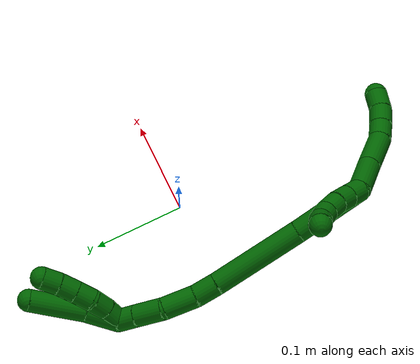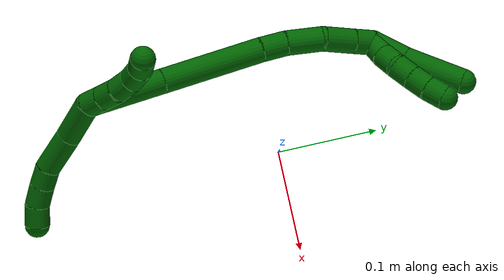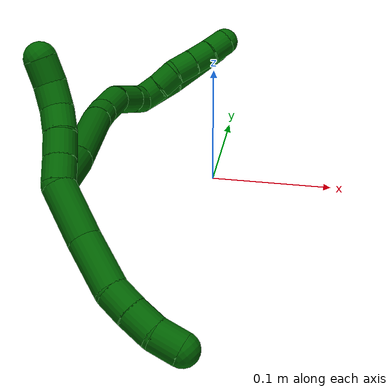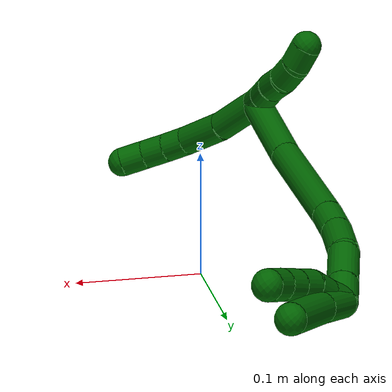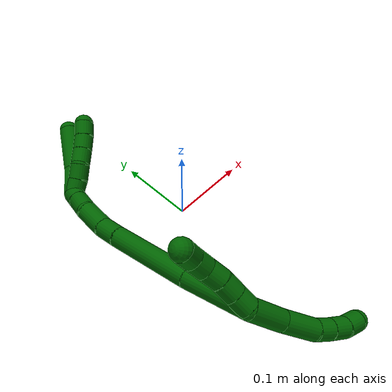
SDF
<sdf version="1.7">
 <world name="default">
  <model name="6">
   <static>0</static>
   <link name="6">
    <collision name="collision-cylinder-e_1_2_8">
     <pose>5.8e-05 -0.00803 -0.020703 2.77158 0.002593 0.013853</pose>
     <geometry><cylinder><radius>0.0125</radius><length>0.044412</length></cylinder></geometry>
     <surface>
      <friction><ode><mu>1.16</mu><mu2>1.16</mu2><slip1>0</slip1><slip2>0</slip2></ode></friction>
      <contact><ode><kp>1e+06</kp><kd>1</kd><max_vel>0</max_vel><min_depth>0.001</min_depth></ode></contact>
     </surface>
    </collision>
    <visual name="visual-cylinder-e_1_2_8">
     <pose>5.8e-05 -0.00803 -0.020703 2.77158 0.002593 0.013853</pose>
     <geometry><cylinder><radius>0.0125</radius><length>0.044412</length></cylinder></geometry>
     <material><ambient>0 0.392157 0.003922 1</ambient></material>
    </visual>
    <collision name="collision-cylinder-e_2_8_9">
     <pose>0.002719 -0.025255 -0.060343 2.6896 0.123053 0.523566</pose>
     <geometry><cylinder><radius>0.0125</radius><length>0.042421</length></cylinder></geometry>
     <surface>
      <friction><ode><mu>1.16</mu><mu2>1.16</mu2><slip1>0</slip1><slip2>0</slip2></ode></friction>
      <contact><ode><kp>1e+06</kp><kd>1</kd><max_vel>0</max_vel><min_depth>0.001</min_depth></ode></contact>
     </surface>
    </collision>
    <visual name="visual-cylinder-e_2_8_9">
     <pose>0.002719 -0.025255 -0.060343 2.6896 0.123053 0.523566</pose>
     <geometry><cylinder><radius>0.0125</radius><length>0.042421</length></cylinder></geometry>
     <material><ambient>0 0.392157 0.003922 1</ambient></material>
    </visual>
    <collision name="collision-cylinder-e_3_9_10">
     <pose>0.008128 -0.036816 -0.088781 2.89741 0.279067 1.70544</pose>
     <geometry><cylinder><radius>0.0125</radius><length>0.020374</length></cylinder></geometry>
     <surface>
      <friction><ode><mu>1.16</mu><mu2>1.16</mu2><slip1>0</slip1><slip2>0</slip2></ode></friction>
      <contact><ode><kp>1e+06</kp><kd>1</kd><max_vel>0</max_vel><min_depth>0.001</min_depth></ode></contact>
     </surface>
    </collision>
    <visual name="visual-cylinder-e_3_9_10">
     <pose>0.008128 -0.036816 -0.088781 2.89741 0.279067 1.70544</pose>
     <geometry><cylinder><radius>0.0125</radius><length>0.020374</length></cylinder></geometry>
     <material><ambient>0 0.392157 0.003922 1</ambient></material>
    </visual>
    <collision name="collision-cylinder-e_4_10_11">
     <pose>0.014401 -0.041168 -0.108262 2.94529 0.328443 2.06931</pose>
     <geometry><cylinder><radius>0.0125</radius><length>0.021497</length></cylinder></geometry>
     <surface>
      <friction><ode><mu>1.16</mu><mu2>1.16</mu2><slip1>0</slip1><slip2>0</slip2></ode></friction>
      <contact><ode><kp>1e+06</kp><kd>1</kd><max_vel>0</max_vel><min_depth>0.001</min_depth></ode></contact>
     </surface>
    </collision>
    <visual name="visual-cylinder-e_4_10_11">
     <pose>0.014401 -0.041168 -0.108262 2.94529 0.328443 2.06931</pose>
     <geometry><cylinder><radius>0.0125</radius><length>0.021497</length></cylinder></geometry>
     <material><ambient>0 0.392157 0.003922 1</ambient></material>
    </visual>
    <collision name="collision-cylinder-e_5_11_6">
     <pose>0.022253 -0.042684 -0.127932 -3.09335 0.424451 -2.91858</pose>
     <geometry><cylinder><radius>0.0125</radius><length>0.021296</length></cylinder></geometry>
     <surface>
      <friction><ode><mu>1.16</mu><mu2>1.16</mu2><slip1>0</slip1><slip2>0</slip2></ode></friction>
      <contact><ode><kp>1e+06</kp><kd>1</kd><max_vel>0</max_vel><min_depth>0.001</min_depth></ode></contact>
     </surface>
    </collision>
    <visual name="visual-cylinder-e_5_11_6">
     <pose>0.022253 -0.042684 -0.127932 -3.09335 0.424451 -2.91858</pose>
     <geometry><cylinder><radius>0.0125</radius><length>0.021296</length></cylinder></geometry>
     <material><ambient>0 0.392157 0.003922 1</ambient></material>
    </visual>
    <collision name="collision-cylinder-e_1_2_12">
     <pose>0.00224 0.006907 0.006876 -0.787606 0.225899 -0.094194</pose>
     <geometry><cylinder><radius>0.0125</radius><length>0.02</length></cylinder></geometry>
     <surface>
      <friction><ode><mu>1.16</mu><mu2>1.16</mu2><slip1>0</slip1><slip2>0</slip2></ode></friction>
      <contact><ode><kp>1e+06</kp><kd>1</kd><max_vel>0</max_vel><min_depth>0.001</min_depth></ode></contact>
     </surface>
    </collision>
    <visual name="visual-cylinder-e_1_2_12">
     <pose>0.00224 0.006907 0.006876 -0.787606 0.225899 -0.094194</pose>
     <geometry><cylinder><radius>0.0125</radius><length>0.02</length></cylinder></geometry>
     <material><ambient>0 0.392157 0.003922 1</ambient></material>
    </visual>
    <collision name="collision-cylinder-e_2_12_13">
     <pose>0.007057 0.020207 0.020996 -0.723183 0.260689 -0.099079</pose>
     <geometry><cylinder><radius>0.0125</radius><length>0.02</length></cylinder></geometry>
     <surface>
      <friction><ode><mu>1.16</mu><mu2>1.16</mu2><slip1>0</slip1><slip2>0</slip2></ode></friction>
      <contact><ode><kp>1e+06</kp><kd>1</kd><max_vel>0</max_vel><min_depth>0.001</min_depth></ode></contact>
     </surface>
    </collision>
    <visual name="visual-cylinder-e_2_12_13">
     <pose>0.007057 0.020207 0.020996 -0.723183 0.260689 -0.099079</pose>
     <geometry><cylinder><radius>0.0125</radius><length>0.02</length></cylinder></geometry>
     <material><ambient>0 0.392157 0.003922 1</ambient></material>
    </visual>
    <collision name="collision-cylinder-e_3_13_14">
     <pose>0.010793 0.032788 0.036011 -0.672385 0.116084 -0.040607</pose>
     <geometry><cylinder><radius>0.0125</radius><length>0.02</length></cylinder></geometry>
     <surface>
      <friction><ode><mu>1.16</mu><mu2>1.16</mu2><slip1>0</slip1><slip2>0</slip2></ode></friction>
      <contact><ode><kp>1e+06</kp><kd>1</kd><max_vel>0</max_vel><min_depth>0.001</min_depth></ode></contact>
     </surface>
    </collision>
    <visual name="visual-cylinder-e_3_13_14">
     <pose>0.010793 0.032788 0.036011 -0.672385 0.116084 -0.040607</pose>
     <geometry><cylinder><radius>0.0125</radius><length>0.02</length></cylinder></geometry>
     <material><ambient>0 0.392157 0.003922 1</ambient></material>
    </visual>
    <collision name="collision-cylinder-e_4_14_15">
     <pose>0.014164 0.04265 0.052814 -0.386466 0.223176 -0.043845</pose>
     <geometry><cylinder><radius>0.0125</radius><length>0.02</length></cylinder></geometry>
     <surface>
      <friction><ode><mu>1.16</mu><mu2>1.16</mu2><slip1>0</slip1><slip2>0</slip2></ode></friction>
      <contact><ode><kp>1e+06</kp><kd>1</kd><max_vel>0</max_vel><min_depth>0.001</min_depth></ode></contact>
     </surface>
    </collision>
    <visual name="visual-cylinder-e_4_14_15">
     <pose>0.014164 0.04265 0.052814 -0.386466 0.223176 -0.043845</pose>
     <geometry><cylinder><radius>0.0125</radius><length>0.02</length></cylinder></geometry>
     <material><ambient>0 0.392157 0.003922 1</ambient></material>
    </visual>
    <collision name="collision-cylinder-e_5_15_5">
     <pose>0.019752 0.046886 0.071244 -0.059558 0.344173 -0.010354</pose>
     <geometry><cylinder><radius>0.0125</radius><length>0.02</length></cylinder></geometry>
     <surface>
      <friction><ode><mu>1.16</mu><mu2>1.16</mu2><slip1>0</slip1><slip2>0</slip2></ode></friction>
      <contact><ode><kp>1e+06</kp><kd>1</kd><max_vel>0</max_vel><min_depth>0.001</min_depth></ode></contact>
     </surface>
    </collision>
    <visual name="visual-cylinder-e_5_15_5">
     <pose>0.019752 0.046886 0.071244 -0.059558 0.344173 -0.010354</pose>
     <geometry><cylinder><radius>0.0125</radius><length>0.02</length></cylinder></geometry>
     <material><ambient>0 0.392157 0.003922 1</ambient></material>
    </visual>
    <collision name="collision-cylinder-e_1_2_16">
     <pose>-0.014377 0.036668 0.004623 -1.44538 -0.370992 0.327989</pose>
     <geometry><cylinder><radius>0.0125</radius><length>0.079311</length></cylinder></geometry>
     <surface>
      <friction><ode><mu>1.16</mu><mu2>1.16</mu2><slip1>0</slip1><slip2>0</slip2></ode></friction>
      <contact><ode><kp>1e+06</kp><kd>1</kd><max_vel>0</max_vel><min_depth>0.001</min_depth></ode></contact>
     </surface>
    </collision>
    <visual name="visual-cylinder-e_1_2_16">
     <pose>-0.014377 0.036668 0.004623 -1.44538 -0.370992 0.327989</pose>
     <geometry><cylinder><radius>0.0125</radius><length>0.079311</length></cylinder></geometry>
     <material><ambient>0 0.392157 0.003922 1</ambient></material>
    </visual>
    <collision name="collision-cylinder-e_2_16_17">
     <pose>-0.043148 0.12183 0.019677 -1.35892 -0.282432 0.228667</pose>
     <geometry><cylinder><radius>0.0125</radius><length>0.103302</length></cylinder></geometry>
     <surface>
      <friction><ode><mu>1.16</mu><mu2>1.16</mu2><slip1>0</slip1><slip2>0</slip2></ode></friction>
      <contact><ode><kp>1e+06</kp><kd>1</kd><max_vel>0</max_vel><min_depth>0.001</min_depth></ode></contact>
     </surface>
    </collision>
    <visual name="visual-cylinder-e_2_16_17">
     <pose>-0.043148 0.12183 0.019677 -1.35892 -0.282432 0.228667</pose>
     <geometry><cylinder><radius>0.0125</radius><length>0.103302</length></cylinder></geometry>
     <material><ambient>0 0.392157 0.003922 1</ambient></material>
    </visual>
    <collision name="collision-cylinder-e_3_17_18">
     <pose>-0.060977 0.182765 0.032033 -1.41735 -0.266336 0.228668</pose>
     <geometry><cylinder><radius>0.0125</radius><length>0.026095</length></cylinder></geometry>
     <surface>
      <friction><ode><mu>1.16</mu><mu2>1.16</mu2><slip1>0</slip1><slip2>0</slip2></ode></friction>
      <contact><ode><kp>1e+06</kp><kd>1</kd><max_vel>0</max_vel><min_depth>0.001</min_depth></ode></contact>
     </surface>
    </collision>
    <visual name="visual-cylinder-e_3_17_18">
     <pose>-0.060977 0.182765 0.032033 -1.41735 -0.266336 0.228668</pose>
     <geometry><cylinder><radius>0.0125</radius><length>0.026095</length></cylinder></geometry>
     <material><ambient>0 0.392157 0.003922 1</ambient></material>
    </visual>
    <collision name="collision-cylinder-e_4_18_19">
     <pose>-0.066463 0.213375 0.035963 -1.4608 -0.111781 0.100137</pose>
     <geometry><cylinder><radius>0.0125</radius><length>0.036791</length></cylinder></geometry>
     <surface>
      <friction><ode><mu>1.16</mu><mu2>1.16</mu2><slip1>0</slip1><slip2>0</slip2></ode></friction>
      <contact><ode><kp>1e+06</kp><kd>1</kd><max_vel>0</max_vel><min_depth>0.001</min_depth></ode></contact>
     </surface>
    </collision>
    <visual name="visual-cylinder-e_4_18_19">
     <pose>-0.066463 0.213375 0.035963 -1.4608 -0.111781 0.100137</pose>
     <geometry><cylinder><radius>0.0125</radius><length>0.036791</length></cylinder></geometry>
     <material><ambient>0 0.392157 0.003922 1</ambient></material>
    </visual>
    <collision name="collision-cylinder-e_5_19_20">
     <pose>-0.071753 0.247242 0.034445 -1.79174 -0.198626 0.247731</pose>
     <geometry><cylinder><radius>0.0125</radius><length>0.03282</length></cylinder></geometry>
     <surface>
      <friction><ode><mu>1.16</mu><mu2>1.16</mu2><slip1>0</slip1><slip2>0</slip2></ode></friction>
      <contact><ode><kp>1e+06</kp><kd>1</kd><max_vel>0</max_vel><min_depth>0.001</min_depth></ode></contact>
     </surface>
    </collision>
    <visual name="visual-cylinder-e_5_19_20">
     <pose>-0.071753 0.247242 0.034445 -1.79174 -0.198626 0.247731</pose>
     <geometry><cylinder><radius>0.0125</radius><length>0.03282</length></cylinder></geometry>
     <material><ambient>0 0.392157 0.003922 1</ambient></material>
    </visual>
    <collision name="collision-cylinder-e_6_20_1">
     <pose>-0.077208 0.273299 0.02863 -1.78822 -0.20595 0.255917</pose>
     <geometry><cylinder><radius>0.0125</radius><length>0.021681</length></cylinder></geometry>
     <surface>
      <friction><ode><mu>1.16</mu><mu2>1.16</mu2><slip1>0</slip1><slip2>0</slip2></ode></friction>
      <contact><ode><kp>1e+06</kp><kd>1</kd><max_vel>0</max_vel><min_depth>0.001</min_depth></ode></contact>
     </surface>
    </collision>
    <visual name="visual-cylinder-e_6_20_1">
     <pose>-0.077208 0.273299 0.02863 -1.78822 -0.20595 0.255917</pose>
     <geometry><cylinder><radius>0.0125</radius><length>0.021681</length></cylinder></geometry>
     <material><ambient>0 0.392157 0.003922 1</ambient></material>
    </visual>
    <collision name="collision-cylinder-e_1_1_21">
     <pose>-0.070664 0.288447 0.025767 -1.69028 1.06777 -1.17558</pose>
     <geometry><cylinder><radius>0.0125</radius><length>0.02</length></cylinder></geometry>
     <surface>
      <friction><ode><mu>1.16</mu><mu2>1.16</mu2><slip1>0</slip1><slip2>0</slip2></ode></friction>
      <contact><ode><kp>1e+06</kp><kd>1</kd><max_vel>0</max_vel><min_depth>0.001</min_depth></ode></contact>
     </surface>
    </collision>
    <visual name="visual-cylinder-e_1_1_21">
     <pose>-0.070664 0.288447 0.025767 -1.69028 1.06777 -1.17558</pose>
     <geometry><cylinder><radius>0.0125</radius><length>0.02</length></cylinder></geometry>
     <material><ambient>0 0.392157 0.003922 1</ambient></material>
    </visual>
    <collision name="collision-cylinder-e_2_21_22">
     <pose>-0.053624 0.298816 0.025744 -1.47222 0.975258 -0.895828</pose>
     <geometry><cylinder><radius>0.0125</radius><length>0.02</length></cylinder></geometry>
     <surface>
      <friction><ode><mu>1.16</mu><mu2>1.16</mu2><slip1>0</slip1><slip2>0</slip2></ode></friction>
      <contact><ode><kp>1e+06</kp><kd>1</kd><max_vel>0</max_vel><min_depth>0.001</min_depth></ode></contact>
     </surface>
    </collision>
    <visual name="visual-cylinder-e_2_21_22">
     <pose>-0.053624 0.298816 0.025744 -1.47222 0.975258 -0.895828</pose>
     <geometry><cylinder><radius>0.0125</radius><length>0.02</length></cylinder></geometry>
     <material><ambient>0 0.392157 0.003922 1</ambient></material>
    </visual>
    <collision name="collision-cylinder-e_3_22_23">
     <pose>-0.038687 0.31172 0.02486 -1.76451 0.728573 -0.867841</pose>
     <geometry><cylinder><radius>0.0125</radius><length>0.02</length></cylinder></geometry>
     <surface>
      <friction><ode><mu>1.16</mu><mu2>1.16</mu2><slip1>0</slip1><slip2>0</slip2></ode></friction>
      <contact><ode><kp>1e+06</kp><kd>1</kd><max_vel>0</max_vel><min_depth>0.001</min_depth></ode></contact>
     </surface>
    </collision>
    <visual name="visual-cylinder-e_3_22_23">
     <pose>-0.038687 0.31172 0.02486 -1.76451 0.728573 -0.867841</pose>
     <geometry><cylinder><radius>0.0125</radius><length>0.02</length></cylinder></geometry>
     <material><ambient>0 0.392157 0.003922 1</ambient></material>
    </visual>
    <collision name="collision-cylinder-e_4_23_24">
     <pose>-0.025475 0.326501 0.022242 -1.72786 0.714813 -0.824382</pose>
     <geometry><cylinder><radius>0.0125</radius><length>0.02</length></cylinder></geometry>
     <surface>
      <friction><ode><mu>1.16</mu><mu2>1.16</mu2><slip1>0</slip1><slip2>0</slip2></ode></friction>
      <contact><ode><kp>1e+06</kp><kd>1</kd><max_vel>0</max_vel><min_depth>0.001</min_depth></ode></contact>
     </surface>
    </collision>
    <visual name="visual-cylinder-e_4_23_24">
     <pose>-0.025475 0.326501 0.022242 -1.72786 0.714813 -0.824382</pose>
     <geometry><cylinder><radius>0.0125</radius><length>0.02</length></cylinder></geometry>
     <material><ambient>0 0.392157 0.003922 1</ambient></material>
    </visual>
    <collision name="collision-cylinder-e_5_24_4">
     <pose>-0.013023 0.342018 0.020521 -1.63769 0.630705 -0.67126</pose>
     <geometry><cylinder><radius>0.0125</radius><length>0.02</length></cylinder></geometry>
     <surface>
      <friction><ode><mu>1.16</mu><mu2>1.16</mu2><slip1>0</slip1><slip2>0</slip2></ode></friction>
      <contact><ode><kp>1e+06</kp><kd>1</kd><max_vel>0</max_vel><min_depth>0.001</min_depth></ode></contact>
     </surface>
    </collision>
    <visual name="visual-cylinder-e_5_24_4">
     <pose>-0.013023 0.342018 0.020521 -1.63769 0.630705 -0.67126</pose>
     <geometry><cylinder><radius>0.0125</radius><length>0.02</length></cylinder></geometry>
     <material><ambient>0 0.392157 0.003922 1</ambient></material>
    </visual>
    <collision name="collision-cylinder-e_1_1_25">
     <pose>-0.069724 0.299432 0.024498 -1.68717 0.548444 -0.61234</pose>
     <geometry><cylinder><radius>0.0125</radius><length>0.037215</length></cylinder></geometry>
     <surface>
      <friction><ode><mu>1.16</mu><mu2>1.16</mu2><slip1>0</slip1><slip2>0</slip2></ode></friction>
      <contact><ode><kp>1e+06</kp><kd>1</kd><max_vel>0</max_vel><min_depth>0.001</min_depth></ode></contact>
     </surface>
    </collision>
    <visual name="visual-cylinder-e_1_1_25">
     <pose>-0.069724 0.299432 0.024498 -1.68717 0.548444 -0.61234</pose>
     <geometry><cylinder><radius>0.0125</radius><length>0.037215</length></cylinder></geometry>
     <material><ambient>0 0.392157 0.003922 1</ambient></material>
    </visual>
    <collision name="collision-cylinder-e_2_25_3">
     <pose>-0.045556 0.343053 0.021879 -1.59862 0.478912 -0.491896</pose>
     <geometry><cylinder><radius>0.0125</radius><length>0.062785</length></cylinder></geometry>
     <surface>
      <friction><ode><mu>1.16</mu><mu2>1.16</mu2><slip1>0</slip1><slip2>0</slip2></ode></friction>
      <contact><ode><kp>1e+06</kp><kd>1</kd><max_vel>0</max_vel><min_depth>0.001</min_depth></ode></contact>
     </surface>
    </collision>
    <visual name="visual-cylinder-e_2_25_3">
     <pose>-0.045556 0.343053 0.021879 -1.59862 0.478912 -0.491896</pose>
     <geometry><cylinder><radius>0.0125</radius><length>0.062785</length></cylinder></geometry>
     <material><ambient>0 0.392157 0.003922 1</ambient></material>
    </visual>
    <collision name="collision-sphere-3">
     <pose>-0.03109 0.370903 0.021104 0 -0 0</pose>
     <geometry><sphere><radius>0.0125</radius></sphere></geometry>
     <surface>
      <friction><ode><mu>1.16</mu><mu2>1.16</mu2><slip1>0</slip1><slip2>0</slip2></ode></friction>
      <contact><ode><kp>1e+06</kp><kd>1</kd><max_vel>0</max_vel><min_depth>0.001</min_depth></ode></contact>
     </surface>
    </collision>
    <visual name="visual-sphere-3">
     <pose>-0.03109 0.370903 0.021104 0 -0 0</pose>
     <geometry><sphere><radius>0.0125</radius></sphere></geometry>
     <material><ambient>0 0.392157 0.003922 1</ambient></material>
    </visual>
    <collision name="collision-sphere-25">
     <pose>-0.060022 0.315203 0.022654 0 -0 0</pose>
     <geometry><sphere><radius>0.0125</radius></sphere></geometry>
     <surface>
      <friction><ode><mu>1.16</mu><mu2>1.16</mu2><slip1>0</slip1><slip2>0</slip2></ode></friction>
      <contact><ode><kp>1e+06</kp><kd>1</kd><max_vel>0</max_vel><min_depth>0.001</min_depth></ode></contact>
     </surface>
    </collision>
    <visual name="visual-sphere-25">
     <pose>-0.060022 0.315203 0.022654 0 -0 0</pose>
     <geometry><sphere><radius>0.0125</radius></sphere></geometry>
     <material><ambient>0 0.392157 0.003922 1</ambient></material>
    </visual>
    <collision name="collision-sphere-4">
     <pose>-0.007125 0.350076 0.019981 0 -0 0</pose>
     <geometry><sphere><radius>0.0125</radius></sphere></geometry>
     <surface>
      <friction><ode><mu>1.16</mu><mu2>1.16</mu2><slip1>0</slip1><slip2>0</slip2></ode></friction>
      <contact><ode><kp>1e+06</kp><kd>1</kd><max_vel>0</max_vel><min_depth>0.001</min_depth></ode></contact>
     </surface>
    </collision>
    <visual name="visual-sphere-4">
     <pose>-0.007125 0.350076 0.019981 0 -0 0</pose>
     <geometry><sphere><radius>0.0125</radius></sphere></geometry>
     <material><ambient>0 0.392157 0.003922 1</ambient></material>
    </visual>
    <collision name="collision-sphere-24">
     <pose>-0.01892 0.33396 0.021061 0 -0 0</pose>
     <geometry><sphere><radius>0.0125</radius></sphere></geometry>
     <surface>
      <friction><ode><mu>1.16</mu><mu2>1.16</mu2><slip1>0</slip1><slip2>0</slip2></ode></friction>
      <contact><ode><kp>1e+06</kp><kd>1</kd><max_vel>0</max_vel><min_depth>0.001</min_depth></ode></contact>
     </surface>
    </collision>
    <visual name="visual-sphere-24">
     <pose>-0.01892 0.33396 0.021061 0 -0 0</pose>
     <geometry><sphere><radius>0.0125</radius></sphere></geometry>
     <material><ambient>0 0.392157 0.003922 1</ambient></material>
    </visual>
    <collision name="collision-sphere-23">
     <pose>-0.032029 0.319042 0.023423 0 -0 0</pose>
     <geometry><sphere><radius>0.0125</radius></sphere></geometry>
     <surface>
      <friction><ode><mu>1.16</mu><mu2>1.16</mu2><slip1>0</slip1><slip2>0</slip2></ode></friction>
      <contact><ode><kp>1e+06</kp><kd>1</kd><max_vel>0</max_vel><min_depth>0.001</min_depth></ode></contact>
     </surface>
    </collision>
    <visual name="visual-sphere-23">
     <pose>-0.032029 0.319042 0.023423 0 -0 0</pose>
     <geometry><sphere><radius>0.0125</radius></sphere></geometry>
     <material><ambient>0 0.392157 0.003922 1</ambient></material>
    </visual>
    <collision name="collision-sphere-22">
     <pose>-0.045345 0.304398 0.026296 0 -0 0</pose>
     <geometry><sphere><radius>0.0125</radius></sphere></geometry>
     <surface>
      <friction><ode><mu>1.16</mu><mu2>1.16</mu2><slip1>0</slip1><slip2>0</slip2></ode></friction>
      <contact><ode><kp>1e+06</kp><kd>1</kd><max_vel>0</max_vel><min_depth>0.001</min_depth></ode></contact>
     </surface>
    </collision>
    <visual name="visual-sphere-22">
     <pose>-0.045345 0.304398 0.026296 0 -0 0</pose>
     <geometry><sphere><radius>0.0125</radius></sphere></geometry>
     <material><ambient>0 0.392157 0.003922 1</ambient></material>
    </visual>
    <collision name="collision-sphere-21">
     <pose>-0.061902 0.293234 0.025192 0 -0 0</pose>
     <geometry><sphere><radius>0.0125</radius></sphere></geometry>
     <surface>
      <friction><ode><mu>1.16</mu><mu2>1.16</mu2><slip1>0</slip1><slip2>0</slip2></ode></friction>
      <contact><ode><kp>1e+06</kp><kd>1</kd><max_vel>0</max_vel><min_depth>0.001</min_depth></ode></contact>
     </surface>
    </collision>
    <visual name="visual-sphere-21">
     <pose>-0.061902 0.293234 0.025192 0 -0 0</pose>
     <geometry><sphere><radius>0.0125</radius></sphere></geometry>
     <material><ambient>0 0.392157 0.003922 1</ambient></material>
    </visual>
    <collision name="collision-sphere-1">
     <pose>-0.079425 0.283661 0.026341 0 -0 0</pose>
     <geometry><sphere><radius>0.0125</radius></sphere></geometry>
     <surface>
      <friction><ode><mu>1.16</mu><mu2>1.16</mu2><slip1>0</slip1><slip2>0</slip2></ode></friction>
      <contact><ode><kp>1e+06</kp><kd>1</kd><max_vel>0</max_vel><min_depth>0.001</min_depth></ode></contact>
     </surface>
    </collision>
    <visual name="visual-sphere-1">
     <pose>-0.079425 0.283661 0.026341 0 -0 0</pose>
     <geometry><sphere><radius>0.0125</radius></sphere></geometry>
     <material><ambient>0 0.392157 0.003922 1</ambient></material>
    </visual>
    <collision name="collision-sphere-6">
     <pose>0.026638 -0.042217 -0.137624 0 -0 0</pose>
     <geometry><sphere><radius>0.0125</radius></sphere></geometry>
     <surface>
      <friction><ode><mu>1.16</mu><mu2>1.16</mu2><slip1>0</slip1><slip2>0</slip2></ode></friction>
      <contact><ode><kp>1e+06</kp><kd>1</kd><max_vel>0</max_vel><min_depth>0.001</min_depth></ode></contact>
     </surface>
    </collision>
    <visual name="visual-sphere-6">
     <pose>0.026638 -0.042217 -0.137624 0 -0 0</pose>
     <geometry><sphere><radius>0.0125</radius></sphere></geometry>
     <material><ambient>0 0.392157 0.003922 1</ambient></material>
    </visual>
    <collision name="collision-sphere-11">
     <pose>0.017869 -0.043152 -0.118241 0 -0 0</pose>
     <geometry><sphere><radius>0.0125</radius></sphere></geometry>
     <surface>
      <friction><ode><mu>1.16</mu><mu2>1.16</mu2><slip1>0</slip1><slip2>0</slip2></ode></friction>
      <contact><ode><kp>1e+06</kp><kd>1</kd><max_vel>0</max_vel><min_depth>0.001</min_depth></ode></contact>
     </surface>
    </collision>
    <visual name="visual-sphere-11">
     <pose>0.017869 -0.043152 -0.118241 0 -0 0</pose>
     <geometry><sphere><radius>0.0125</radius></sphere></geometry>
     <material><ambient>0 0.392157 0.003922 1</ambient></material>
    </visual>
    <collision name="collision-sphere-10">
     <pose>0.010934 -0.039184 -0.098283 0 -0 0</pose>
     <geometry><sphere><radius>0.0125</radius></sphere></geometry>
     <surface>
      <friction><ode><mu>1.16</mu><mu2>1.16</mu2><slip1>0</slip1><slip2>0</slip2></ode></friction>
      <contact><ode><kp>1e+06</kp><kd>1</kd><max_vel>0</max_vel><min_depth>0.001</min_depth></ode></contact>
     </surface>
    </collision>
    <visual name="visual-sphere-10">
     <pose>0.010934 -0.039184 -0.098283 0 -0 0</pose>
     <geometry><sphere><radius>0.0125</radius></sphere></geometry>
     <material><ambient>0 0.392157 0.003922 1</ambient></material>
    </visual>
    <collision name="collision-sphere-9">
     <pose>0.005322 -0.034449 -0.079279 0 -0 0</pose>
     <geometry><sphere><radius>0.0125</radius></sphere></geometry>
     <surface>
      <friction><ode><mu>1.16</mu><mu2>1.16</mu2><slip1>0</slip1><slip2>0</slip2></ode></friction>
      <contact><ode><kp>1e+06</kp><kd>1</kd><max_vel>0</max_vel><min_depth>0.001</min_depth></ode></contact>
     </surface>
    </collision>
    <visual name="visual-sphere-9">
     <pose>0.005322 -0.034449 -0.079279 0 -0 0</pose>
     <geometry><sphere><radius>0.0125</radius></sphere></geometry>
     <material><ambient>0 0.392157 0.003922 1</ambient></material>
    </visual>
    <collision name="collision-sphere-2">
     <geometry><sphere><radius>0.0125</radius></sphere></geometry>
     <surface>
      <friction><ode><mu>1.16</mu><mu2>1.16</mu2><slip1>0</slip1><slip2>0</slip2></ode></friction>
      <contact><ode><kp>1e+06</kp><kd>1</kd><max_vel>0</max_vel><min_depth>0.001</min_depth></ode></contact>
     </surface>
    </collision>
    <visual name="visual-sphere-2">
     <geometry><sphere><radius>0.0125</radius></sphere></geometry>
     <material><ambient>0 0.392157 0.003922 1</ambient></material>
    </visual>
    <collision name="collision-sphere-19">
     <pose>-0.068515 0.231545 0.03797 0 -0 0</pose>
     <geometry><sphere><radius>0.0125</radius></sphere></geometry>
     <surface>
      <friction><ode><mu>1.16</mu><mu2>1.16</mu2><slip1>0</slip1><slip2>0</slip2></ode></friction>
      <contact><ode><kp>1e+06</kp><kd>1</kd><max_vel>0</max_vel><min_depth>0.001</min_depth></ode></contact>
     </surface>
    </collision>
    <visual name="visual-sphere-19">
     <pose>-0.068515 0.231545 0.03797 0 -0 0</pose>
     <geometry><sphere><radius>0.0125</radius></sphere></geometry>
     <material><ambient>0 0.392157 0.003922 1</ambient></material>
    </visual>
    <collision name="collision-sphere-8">
     <pose>0.000115 -0.016061 -0.041407 0 -0 0</pose>
     <geometry><sphere><radius>0.0125</radius></sphere></geometry>
     <surface>
      <friction><ode><mu>1.16</mu><mu2>1.16</mu2><slip1>0</slip1><slip2>0</slip2></ode></friction>
      <contact><ode><kp>1e+06</kp><kd>1</kd><max_vel>0</max_vel><min_depth>0.001</min_depth></ode></contact>
     </surface>
    </collision>
    <visual name="visual-sphere-8">
     <pose>0.000115 -0.016061 -0.041407 0 -0 0</pose>
     <geometry><sphere><radius>0.0125</radius></sphere></geometry>
     <material><ambient>0 0.392157 0.003922 1</ambient></material>
    </visual>
    <collision name="collision-sphere-12">
     <pose>0.00448 0.013813 0.013752 0 -0 0</pose>
     <geometry><sphere><radius>0.0125</radius></sphere></geometry>
     <surface>
      <friction><ode><mu>1.16</mu><mu2>1.16</mu2><slip1>0</slip1><slip2>0</slip2></ode></friction>
      <contact><ode><kp>1e+06</kp><kd>1</kd><max_vel>0</max_vel><min_depth>0.001</min_depth></ode></contact>
     </surface>
    </collision>
    <visual name="visual-sphere-12">
     <pose>0.00448 0.013813 0.013752 0 -0 0</pose>
     <geometry><sphere><radius>0.0125</radius></sphere></geometry>
     <material><ambient>0 0.392157 0.003922 1</ambient></material>
    </visual>
    <collision name="collision-sphere-13">
     <pose>0.009635 0.026602 0.02824 0 -0 0</pose>
     <geometry><sphere><radius>0.0125</radius></sphere></geometry>
     <surface>
      <friction><ode><mu>1.16</mu><mu2>1.16</mu2><slip1>0</slip1><slip2>0</slip2></ode></friction>
      <contact><ode><kp>1e+06</kp><kd>1</kd><max_vel>0</max_vel><min_depth>0.001</min_depth></ode></contact>
     </surface>
    </collision>
    <visual name="visual-sphere-13">
     <pose>0.009635 0.026602 0.02824 0 -0 0</pose>
     <geometry><sphere><radius>0.0125</radius></sphere></geometry>
     <material><ambient>0 0.392157 0.003922 1</ambient></material>
    </visual>
    <collision name="collision-sphere-14">
     <pose>0.011951 0.038975 0.043781 0 -0 0</pose>
     <geometry><sphere><radius>0.0125</radius></sphere></geometry>
     <surface>
      <friction><ode><mu>1.16</mu><mu2>1.16</mu2><slip1>0</slip1><slip2>0</slip2></ode></friction>
      <contact><ode><kp>1e+06</kp><kd>1</kd><max_vel>0</max_vel><min_depth>0.001</min_depth></ode></contact>
     </surface>
    </collision>
    <visual name="visual-sphere-14">
     <pose>0.011951 0.038975 0.043781 0 -0 0</pose>
     <geometry><sphere><radius>0.0125</radius></sphere></geometry>
     <material><ambient>0 0.392157 0.003922 1</ambient></material>
    </visual>
    <collision name="collision-sphere-15">
     <pose>0.016378 0.046326 0.061847 0 -0 0</pose>
     <geometry><sphere><radius>0.0125</radius></sphere></geometry>
     <surface>
      <friction><ode><mu>1.16</mu><mu2>1.16</mu2><slip1>0</slip1><slip2>0</slip2></ode></friction>
      <contact><ode><kp>1e+06</kp><kd>1</kd><max_vel>0</max_vel><min_depth>0.001</min_depth></ode></contact>
     </surface>
    </collision>
    <visual name="visual-sphere-15">
     <pose>0.016378 0.046326 0.061847 0 -0 0</pose>
     <geometry><sphere><radius>0.0125</radius></sphere></geometry>
     <material><ambient>0 0.392157 0.003922 1</ambient></material>
    </visual>
    <collision name="collision-sphere-5">
     <pose>0.023126 0.047447 0.080641 0 -0 0</pose>
     <geometry><sphere><radius>0.0125</radius></sphere></geometry>
     <surface>
      <friction><ode><mu>1.16</mu><mu2>1.16</mu2><slip1>0</slip1><slip2>0</slip2></ode></friction>
      <contact><ode><kp>1e+06</kp><kd>1</kd><max_vel>0</max_vel><min_depth>0.001</min_depth></ode></contact>
     </surface>
    </collision>
    <visual name="visual-sphere-5">
     <pose>0.023126 0.047447 0.080641 0 -0 0</pose>
     <geometry><sphere><radius>0.0125</radius></sphere></geometry>
     <material><ambient>0 0.392157 0.003922 1</ambient></material>
    </visual>
    <collision name="collision-sphere-16">
     <pose>-0.028754 0.073335 0.009246 0 -0 0</pose>
     <geometry><sphere><radius>0.0125</radius></sphere></geometry>
     <surface>
      <friction><ode><mu>1.16</mu><mu2>1.16</mu2><slip1>0</slip1><slip2>0</slip2></ode></friction>
      <contact><ode><kp>1e+06</kp><kd>1</kd><max_vel>0</max_vel><min_depth>0.001</min_depth></ode></contact>
     </surface>
    </collision>
    <visual name="visual-sphere-16">
     <pose>-0.028754 0.073335 0.009246 0 -0 0</pose>
     <geometry><sphere><radius>0.0125</radius></sphere></geometry>
     <material><ambient>0 0.392157 0.003922 1</ambient></material>
    </visual>
    <collision name="collision-sphere-17">
     <pose>-0.057543 0.170326 0.030109 0 -0 0</pose>
     <geometry><sphere><radius>0.0125</radius></sphere></geometry>
     <surface>
      <friction><ode><mu>1.16</mu><mu2>1.16</mu2><slip1>0</slip1><slip2>0</slip2></ode></friction>
      <contact><ode><kp>1e+06</kp><kd>1</kd><max_vel>0</max_vel><min_depth>0.001</min_depth></ode></contact>
     </surface>
    </collision>
    <visual name="visual-sphere-17">
     <pose>-0.057543 0.170326 0.030109 0 -0 0</pose>
     <geometry><sphere><radius>0.0125</radius></sphere></geometry>
     <material><ambient>0 0.392157 0.003922 1</ambient></material>
    </visual>
    <collision name="collision-sphere-18">
     <pose>-0.064411 0.195204 0.033957 0 -0 0</pose>
     <geometry><sphere><radius>0.0125</radius></sphere></geometry>
     <surface>
      <friction><ode><mu>1.16</mu><mu2>1.16</mu2><slip1>0</slip1><slip2>0</slip2></ode></friction>
      <contact><ode><kp>1e+06</kp><kd>1</kd><max_vel>0</max_vel><min_depth>0.001</min_depth></ode></contact>
     </surface>
    </collision>
    <visual name="visual-sphere-18">
     <pose>-0.064411 0.195204 0.033957 0 -0 0</pose>
     <geometry><sphere><radius>0.0125</radius></sphere></geometry>
     <material><ambient>0 0.392157 0.003922 1</ambient></material>
    </visual>
    <collision name="collision-sphere-20">
     <pose>-0.074991 0.262938 0.030919 0 -0 0</pose>
     <geometry><sphere><radius>0.0125</radius></sphere></geometry>
     <surface>
      <friction><ode><mu>1.16</mu><mu2>1.16</mu2><slip1>0</slip1><slip2>0</slip2></ode></friction>
      <contact><ode><kp>1e+06</kp><kd>1</kd><max_vel>0</max_vel><min_depth>0.001</min_depth></ode></contact>
     </surface>
    </collision>
    <visual name="visual-sphere-20">
     <pose>-0.074991 0.262938 0.030919 0 -0 0</pose>
     <geometry><sphere><radius>0.0125</radius></sphere></geometry>
     <material><ambient>0 0.392157 0.003922 1</ambient></material>
    </visual>
    <inertial>
     <pose>-0.028 0.140269 0.005862 0 -0 0</pose>
     <mass>0.75</mass>
     <inertia>
      <ixx>0.000222</ixx>
      <ixy>0</ixy>
      <ixz>0</ixz>
      <iyy>0.000101</iyy>
      <iyz>0</iyz>
      <izz>-0.000152</izz>
     </inertia>
    </inertial>
   </link>
   <pose>-0.083202 -0.172344 0.083459 -0.159258 -0.799448 -0.13598</pose>
  </model>
 </world>
</sdf>
